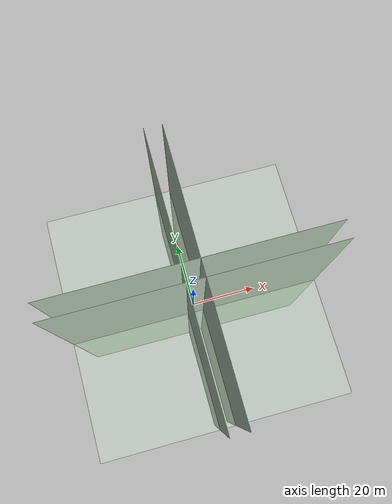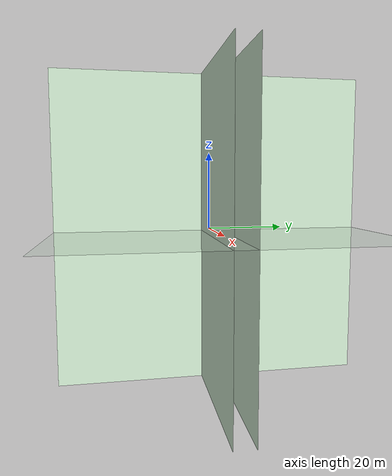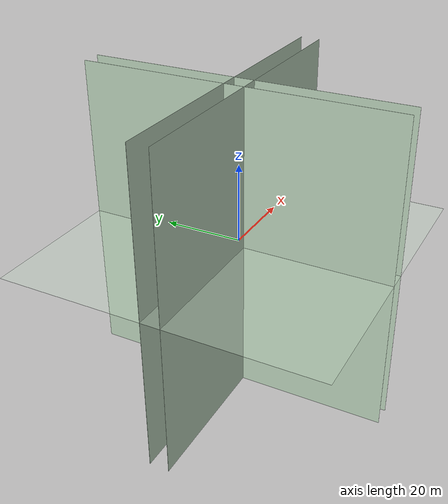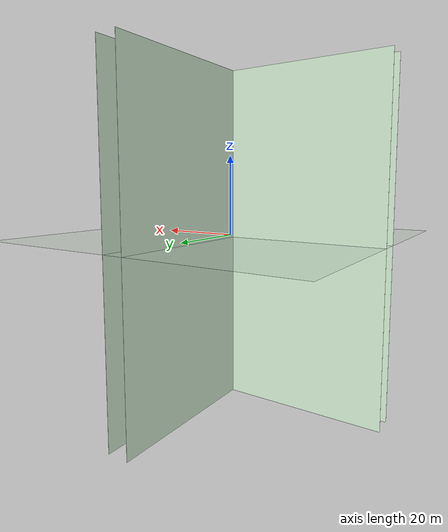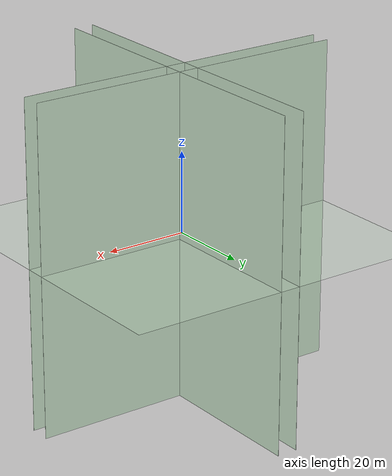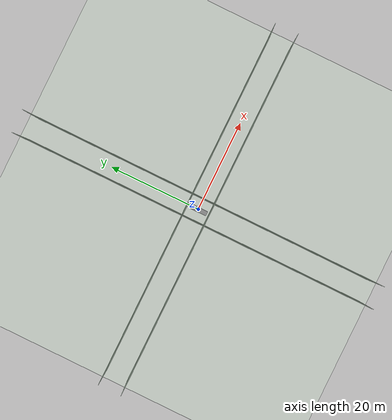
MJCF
<mujoco model="peg_pusher">
    <compiler inertiafromgeom="true" angle="radian" coordinate="local"/>
    <option timestep="0.01" gravity="0 0 -1000" iterations="20" integrator="Euler" />

    <asset>
        <texture builtin="checker" height="100" name="texplane" rgb1="0 0 0" rgb2="0.8 0.8 0.8" type="2d" width="100"/>
        <material name="MatPlane" reflectance="0.5" shininess="1" specular="1" texrepeat="60 60" texture="texplane"/>
    </asset>

    <default>
        <joint armature='0.04' damping="0.001" limited="true"/>
        <geom friction=".0 .0 .0" density="300" margin="0.002" condim="1" contype="0" conaffinity="0"/>
    </default>

    <worldbody>
        <camera name="maincam" mode="fixed" pos="0 0 6" quat="0 0 0 -1"/>
        <light diffuse=".5 .5 .5" pos="0 0 3" dir="0 0 -1"/>
        <geom conaffinity="1" condim="3" material="MatPlane" name="floor" pos="0 0 0" rgba="0.8 0.9 0.8 1" size="40 40 40" type="plane"/>
        <geom conaffinity="1" condim="3" material="MatPlane" name="wall0" pos="0 -2.5 0" euler="-1.5708 0 0" rgba="0.8 0.9 0.8 1" size="40 40 40" type="plane"/>
        <geom conaffinity="1" condim="3" material="MatPlane" name="wall1" pos="0 2.5 0" euler="1.5708 0 0" rgba="0.8 0.9 0.8 1" size="40 40 40" type="plane"/>
        <geom conaffinity="1" condim="3" material="MatPlane" name="wall2" pos="-2.5 0 0" euler="0 1.5708 0" rgba="0.8 0.9 0.8 1" size="40 40 40" type="plane"/>
        <geom conaffinity="1" condim="3" material="MatPlane" name="wall3" pos="2.5 0 0" euler="0 -1.5708 0" rgba="0.8 0.9 0.8 1" size="40 40 40" type="plane"/>

        <body name="wall" pos="0 0 0">
            <geom type="box" size="0.5 2 1" conaffinity="1" contype="1"/>
        </body>

        <body name="point" pos="0 0 0">
            <geom name="point_geom" type="sphere" rgba="1 0 0 1" pos="0 0 0" size="0.1" density="1" conaffinity="1" contype="1"/>
            <joint name="point_x" type="slide" pos="0 0 0" axis="1 0 0" range="-2.5 2.5"/>
            <joint name="point_y" type="slide" pos="0 0 0" axis="0 1 0" range="-2.5 2.5"/>
            <joint name="point_z" type="slide" pos="0 0 0" axis="0 0 1" range="0 1"/>
        </body>
    </worldbody>

    <actuator>
        <motor joint="point_x" ctrlrange="-10 10" ctrllimited="true"/>
        <motor joint="point_y" ctrlrange="-10 10" ctrllimited="true"/>
    </actuator>
</mujoco>
